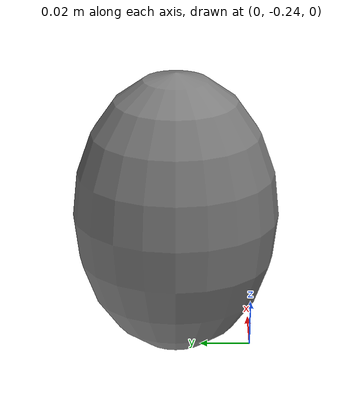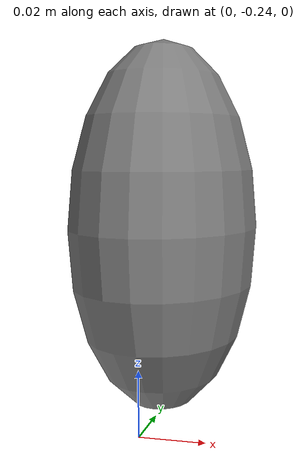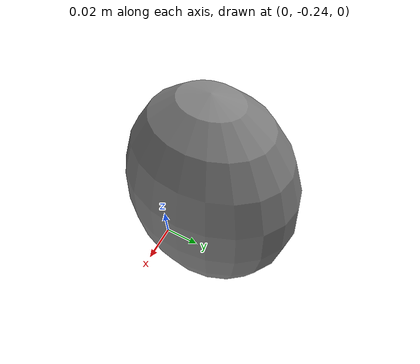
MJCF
<mujoco>
	<worldbody>
		<body name="ellipsoid" pos="0.0 -0.21 0.06" axisangle="0.0 0.0 1.0 0.0">
			<geom type="ellipsoid" size="0.03 0.04 0.06"/>
			<!-- Comment out to fix the object -->
		</body>

	</worldbody>

</mujoco>
